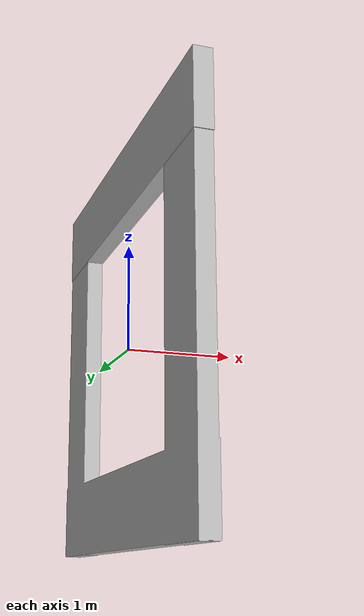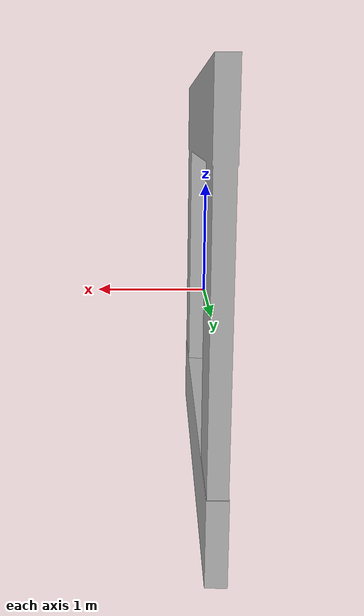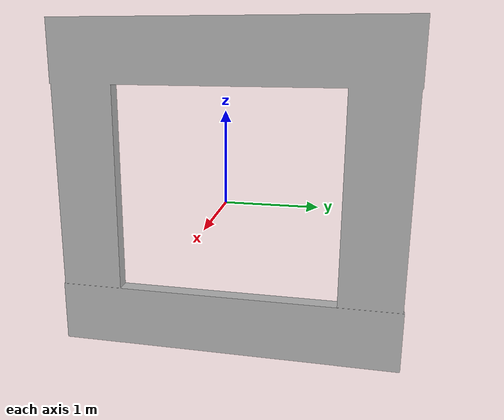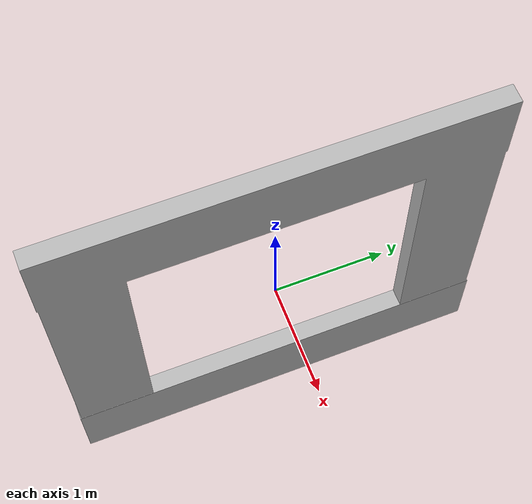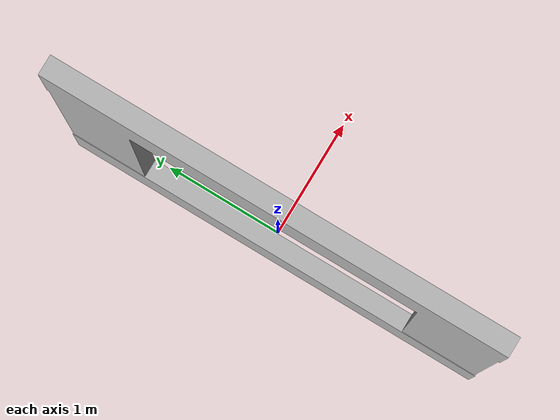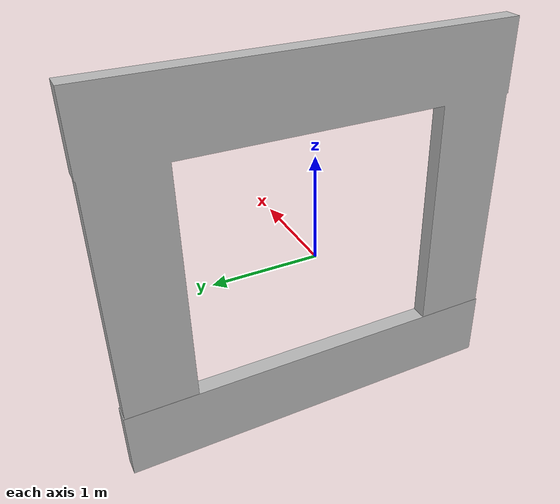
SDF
<?xml version="1.0" ?>
<sdf version="1.9">
  <model name="pro_gate2_mesh">
    <static>true</static>

    <link name="frame">

      <collision name="frame_collision">
      <pose>0 0 -2. 0 0 1.57</pose>
      <surface>
        <contact>
          <collide_bitmask>0x00</collide_bitmask>
        </contact>
      </surface>
        <geometry>
          <mesh>
            <uri>model://materials/textures/gate2.dae</uri>
            <scale>1. 1. 1</scale>
          </mesh>

        </geometry>
      </collision>

      <visual name="frame_visual">
      <pose>0 0 -2. 0 0 1.57</pose>
        <geometry>
          <mesh>
            <uri>model://materials/textures/gate2.dae</uri>
            <scale>1. 1. 1</scale>
          </mesh>

        </geometry>

      </visual>
    </link>
  </model>
</sdf>
